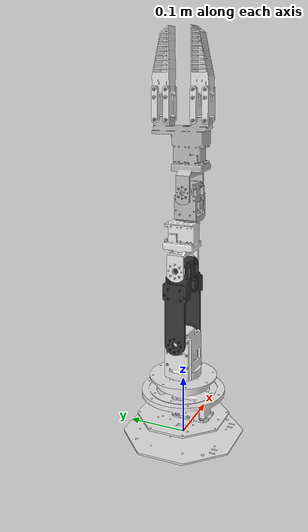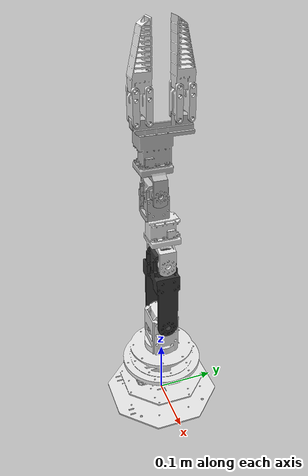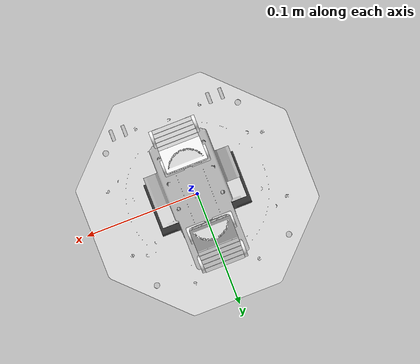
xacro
<?xml version="1.0"?>
<robot xmlns:xacro="http://www.ros.org/wiki/xacro" name="dynamixel_arm">
    <xacro:arg name="initial_positions_file" default="initial_positions.yaml" />

    <!-- Import dynamixel_arm urdf file -->
    <xacro:include filename="$(find dynamixel_arm_description)/urdf/dynamixel_arm.urdf" />

    <!-- Import control_xacro -->
    <xacro:include filename="dynamixel_arm.ros2_control.xacro" />

    <xacro:dynamixel_arm_ros2_control name="FakeSystem" initial_positions_file="$(arg initial_positions_file)"/>

</robot>

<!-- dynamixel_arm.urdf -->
<robot name="dynamixel_arm">
  <material name="silver_default">
    <color rgba="0.700 0.700 0.700 1.000"/>
  </material>
  <material name="opaque235235235">
    <color rgba="0.9215686274509803 0.9215686274509803 0.9215686274509803 1.0"/>
  </material>
  <material name="opaque545454">
    <color rgba="0.21176470588235294 0.21176470588235294 0.21176470588235294 1.0"/>
  </material>
  <material name="opaque191191191">
    <color rgba="0.7490196078431373 0.7490196078431373 0.7490196078431373 1.0"/>
  </material>

  <!-- Transmissions -->
  <transmission name="joint1_tran">
    <type>transmission_interface/SimpleTransmission</type>
    <joint name="joint1">
      <hardwareInterface>hardware_interface/PositionJointInterface</hardwareInterface>
    </joint>
    <actuator name="joint1_actr">
      <hardwareInterface>hardware_interface/PositionJointInterface</hardwareInterface>
      <mechanicalReduction>1</mechanicalReduction>
    </actuator>
  </transmission>

  <transmission name="joint2_tran">
    <type>transmission_interface/SimpleTransmission</type>
    <joint name="joint2">
      <hardwareInterface>hardware_interface/PositionJointInterface</hardwareInterface>
    </joint>
    <actuator name="joint2_actr">
      <hardwareInterface>hardware_interface/PositionJointInterface</hardwareInterface>
      <mechanicalReduction>1</mechanicalReduction>
    </actuator>
  </transmission>

  <transmission name="joint3_tran">
    <type>transmission_interface/SimpleTransmission</type>
    <joint name="joint3">
      <hardwareInterface>hardware_interface/PositionJointInterface</hardwareInterface>
    </joint>
    <actuator name="joint3_actr">
      <hardwareInterface>hardware_interface/PositionJointInterface</hardwareInterface>
      <mechanicalReduction>1</mechanicalReduction>
    </actuator>
  </transmission>

  <transmission name="joint4_tran">
    <type>transmission_interface/SimpleTransmission</type>
    <joint name="joint4">
      <hardwareInterface>hardware_interface/PositionJointInterface</hardwareInterface>
    </joint>
    <actuator name="joint4_actr">
      <hardwareInterface>hardware_interface/PositionJointInterface</hardwareInterface>
      <mechanicalReduction>1</mechanicalReduction>
    </actuator>
  </transmission>

  <transmission name="joint5_tran">
    <type>transmission_interface/SimpleTransmission</type>
    <joint name="joint5">
      <hardwareInterface>hardware_interface/PositionJointInterface</hardwareInterface>
    </joint>
    <actuator name="joint5_actr">
      <hardwareInterface>hardware_interface/PositionJointInterface</hardwareInterface>
      <mechanicalReduction>1</mechanicalReduction>
    </actuator>
  </transmission>

  <transmission name="gripper_tran">
    <type>transmission_interface/SimpleTransmission</type>
    <joint name="gripper">
      <hardwareInterface>hardware_interface/PositionJointInterface</hardwareInterface>
    </joint>
    <actuator name="gripper_actr">
      <hardwareInterface>hardware_interface/PositionJointInterface</hardwareInterface>
      <mechanicalReduction>1</mechanicalReduction>
    </actuator>
  </transmission>

  <transmission name="outlink1_tran">
    <type>transmission_interface/SimpleTransmission</type>
    <joint name="outlink1">
      <hardwareInterface>hardware_interface/PositionJointInterface</hardwareInterface>
    </joint>
    <actuator name="outlink1_actr">
      <hardwareInterface>hardware_interface/PositionJointInterface</hardwareInterface>
      <mechanicalReduction>1</mechanicalReduction>
    </actuator>
  </transmission>

  <transmission name="outlink2_upper_tran">
    <type>transmission_interface/SimpleTransmission</type>
    <joint name="outlink2_upper">
      <hardwareInterface>hardware_interface/PositionJointInterface</hardwareInterface>
    </joint>
    <actuator name="outlink2_upper_actr">
      <hardwareInterface>hardware_interface/PositionJointInterface</hardwareInterface>
      <mechanicalReduction>1</mechanicalReduction>
    </actuator>
  </transmission>

  <transmission name="outlink1_upper_tran">
    <type>transmission_interface/SimpleTransmission</type>
    <joint name="outlink1_upper">
      <hardwareInterface>hardware_interface/PositionJointInterface</hardwareInterface>
    </joint>
    <actuator name="outlink1_upper_actr">
      <hardwareInterface>hardware_interface/PositionJointInterface</hardwareInterface>
      <mechanicalReduction>1</mechanicalReduction>
    </actuator>
  </transmission>

  <!-- Links -->
  <link name="base_link">
    <inertial>
      <origin rpy="0 0 0" xyz="-0.000113337289716781 -0.00309076282926622 0.056311276285655"/>
      <mass value="0.422228337302641"/>
      <inertia ixx="0.00112843002096474" ixy="-1.66340254078764e-07" ixz="1.17964827473214e-06" iyy="0.00109272943382664" iyz="-1.56035446544229e-06" izz="0.0010635705036595"/>
    </inertial>
    <visual>
      <origin rpy="0 0 0" xyz="0 0 0"/>
      <geometry>
        <mesh filename="package://dynamixel_arm_description/meshes/base_link.stl" scale="0.001 0.001 0.001"/>
      </geometry>
      <material name="opaque235235235"/>
    </visual>
    <collision>
      <origin rpy="0 0 0" xyz="0 0 0"/>
      <geometry>
        <mesh filename="package://dynamixel_arm_description/meshes/base_link.stl" scale="0.001 0.001 0.001"/>
      </geometry>
    </collision>
  </link>

  <link name="link_1_1">
    <inertial>
      <origin rpy="0 0 0" xyz="-0.00021127011294436507 1.595606746709482e-05 0.03689469547015051"/>
      <mass value="0.191421447446045"/>
      <inertia ixx="0.000187614835027364" ixy="1.55276339993076e-09" ixz="1.97342429764555e-06" iyy="0.000199164507943486" iyz="-5.72420498094766e-08" izz="6.97213054895995e-05"/>
    </inertial>
    <visual>
      <origin rpy="0 0 0" xyz="0.000245 -4.5e-05 -0.1003"/>
      <geometry>
        <mesh filename="package://dynamixel_arm_description/meshes/link_1_1.stl" scale="0.001 0.001 0.001"/>
      </geometry>
      <material name="opaque235235235"/>
    </visual>
    <collision>
      <origin rpy="0 0 0" xyz="0.000245 -4.5e-05 -0.1003"/>
      <geometry>
        <mesh filename="package://dynamixel_arm_description/meshes/link_1_1.stl" scale="0.001 0.001 0.001"/>
      </geometry>
    </collision>
  </link>

  <link name="link_2_1">
    <inertial>
      <origin rpy="0 0 0" xyz="0.02591593484212496 3.986740963651461e-05 0.08437010561785152"/>
      <mass value="0.137640357094768"/>
      <inertia ixx="0.000210163851263243" ixy="2.1567553744296e-09" ixz="4.61871241706466e-06" iyy="0.00026441483283246" iyz="-8.51937840517638e-08" izz="8.19214620197699e-05"/>
    </inertial>
    <visual>
      <origin rpy="0 0 0" xyz="0.026245 -7.8e-05 -0.1729"/>
      <geometry>
        <mesh filename="package://dynamixel_arm_description/meshes/link_2_1.stl" scale="0.001 0.001 0.001"/>
      </geometry>
      <material name="opaque545454"/>
    </visual>
    <collision>
      <origin rpy="0 0 0" xyz="0.026245 -7.8e-05 -0.1729"/>
      <geometry>
        <mesh filename="package://dynamixel_arm_description/meshes/link_2_1.stl" scale="0.001 0.001 0.001"/>
      </geometry>
    </collision>
  </link>

  <link name="link_3_1">
    <inertial>
      <origin rpy="0 0 0" xyz="0.02389185573820618 0.00039017901099007115 0.039646162333625445"/>
      <mass value="0.0865814264869725"/>
      <inertia ixx="5.26983036251445e-05" ixy="1.23803634269193e-08" ixz="1.34215329925785e-06" iyy="5.82181519370745e-05" iyz="3.3725159958289e-07" izz="3.23003384463733e-05"/>
    </inertial>
    <visual>
      <origin rpy="0 0 0" xyz="0.023845 -0.000136 -0.296812"/>
      <geometry>
        <mesh filename="package://dynamixel_arm_description/meshes/link_3_1.stl" scale="0.001 0.001 0.001"/>
      </geometry>
      <material name="opaque235235235"/>
    </visual>
    <collision>
      <origin rpy="0 0 0" xyz="0.023845 -0.000136 -0.296812"/>
      <geometry>
        <mesh filename="package://dynamixel_arm_description/meshes/link_3_1.stl" scale="0.001 0.001 0.001"/>
      </geometry>
    </collision>
  </link>

  <link name="link_4_1">
    <inertial>
      <origin rpy="0 0 0" xyz="-4.729244333769619e-05 1.2736207935194407e-05 0.027634557411537197"/>
      <mass value="0.0619910161529994"/>
      <inertia ixx="2.25267050284594e-05" ixy="9.478187392860066e-11" ixz="2.04420176912613e-07" iyy="2.59843604385711e-05" iyz="-5.8368411178563e-09" izz="1.34826294019835e-05"/>
    </inertial>
    <visual>
      <origin rpy="0 0 0" xyz="0.000345 0.011427 -0.375018"/>
      <geometry>
        <mesh filename="package://dynamixel_arm_description/meshes/link_4_1.stl" scale="0.001 0.001 0.001"/>
      </geometry>
      <material name="opaque191191191"/>
    </visual>
    <collision>
      <origin rpy="0 0 0" xyz="0.000345 0.011427 -0.375018"/>
      <geometry>
        <mesh filename="package://dynamixel_arm_description/meshes/link_4_1.stl" scale="0.001 0.001 0.001"/>
      </geometry>
    </collision>
  </link>

  <link name="link_5_1">
    <inertial>
      <origin rpy="0 0 0" xyz="0.02247506515647412 0.0032734067218829366 0.059549232712919675"/>
      <mass value="0.125379089079449"/>
      <inertia ixx="0.000159136830790569" ixy="-5.13967328740984e-08" ixz="-9.34886894704644e-07" iyy="0.000128193874409835" iyz="-1.71087932324318e-05" izz="6.86470115827554e-05"/>
    </inertial>
    <visual>
      <origin rpy="0 0 0" xyz="0.023045 0.011405 -0.421518"/>
      <geometry>
        <mesh filename="package://dynamixel_arm_description/meshes/link_5_1.stl" scale="0.001 0.001 0.001"/>
      </geometry>
      <material name="opaque191191191"/>
    </visual>
    <collision>
      <origin rpy="0 0 0" xyz="0.023045 0.011405 -0.421518"/>
      <geometry>
        <mesh filename="package://dynamixel_arm_description/meshes/link_5_1.stl" scale="0.001 0.001 0.001"/>
      </geometry>
    </collision>
  </link>

  <link name="linkout_1_1">
    <inertial>
      <origin rpy="0 0 0" xyz="-0.008749719683909477 1.0177443021751331e-05 0.021281981725918775"/>
      <mass value="0.010667990446522"/>
      <inertia ixx="1.66185068535855e-06" ixy="6.296366473855638e-19" ixz="5.831398325372231e-18" iyy="2.51806760939721e-06" iyz="-6.83607997357775e-10" izz="1.0414279599588e-06"/>
    </inertial>
    <visual>
      <origin rpy="0 0 0" xyz="-0.008255 0.040756 -0.527932"/>
      <geometry>
        <mesh filename="package://dynamixel_arm_description/meshes/linkout_1_1.stl" scale="0.001 0.001 0.001"/>
      </geometry>
      <material name="opaque235235235"/>
    </visual>
    <collision>
      <origin rpy="0 0 0" xyz="-0.008255 0.040756 -0.527932"/>
      <geometry>
        <mesh filename="package://dynamixel_arm_description/meshes/linkout_1_1.stl" scale="0.001 0.001 0.001"/>
      </geometry>
    </collision>
  </link>

  <link name="linkin_1_1">
    <inertial>
      <origin rpy="0 0 0" xyz="-0.008749719683895821 -6.803660653320262e-05 0.021452642980543057"/>
      <mass value="0.009902955851522"/>
      <inertia ixx="1.63040160058425e-06" ixy="6.281675746176696e-19" ixz="-5.685285141970864e-18" iyy="2.4911226210139e-06" iyz="-6.73132213324949e-09" izz="1.03347610765994e-06"/>
    </inertial>
    <visual>
      <origin rpy="0 0 0" xyz="-0.008255 0.021756 -0.527923"/>
      <geometry>
        <mesh filename="package://dynamixel_arm_description/meshes/linkin_1_1.stl" scale="0.001 0.001 0.001"/>
      </geometry>
      <material name="opaque235235235"/>
    </visual>
    <collision>
      <origin rpy="0 0 0" xyz="-0.008255 0.021756 -0.527923"/>
      <geometry>
        <mesh filename="package://dynamixel_arm_description/meshes/linkin_1_1.stl" scale="0.001 0.001 0.001"/>
      </geometry>
    </collision>
  </link>

  <link name="linkin_2_1">
    <inertial>
      <origin rpy="0 0 0" xyz="-0.008749719683863354 8.849206158021566e-05 0.021453029167782023"/>
      <mass value="0.009902955851522"/>
      <inertia ixx="1.63040160058381e-06" ixy="6.317542297536996e-19" ixz="5.828433710056841e-18" iyy="2.49113391998564e-06" iyz="5.37035048676633e-09" izz="1.03346480868897e-06"/>
    </inertial>
    <visual>
      <origin rpy="0 0 0" xyz="-0.008255 -0.022244 -0.527902"/>
      <geometry>
        <mesh filename="package://dynamixel_arm_description/meshes/linkin_2_1.stl" scale="0.001 0.001 0.001"/>
      </geometry>
      <material name="opaque235235235"/>
    </visual>
    <collision>
      <origin rpy="0 0 0" xyz="-0.008255 -0.022244 -0.527902"/>
      <geometry>
        <mesh filename="package://dynamixel_arm_description/meshes/linkin_2_1.stl" scale="0.001 0.001 0.001"/>
      </geometry>
    </collision>
  </link>

  <link name="linkout_2_1">
    <inertial>
      <origin rpy="0 0 0" xyz="-0.008749719683849508 1.0168507691990514e-05 0.02128270126064702"/>
      <mass value="0.010667990446522"/>
      <inertia ixx="1.66185068535768e-06" ixy="6.293190100303435e-19" ixz="5.829704259477722e-18" iyy="2.51806760939721e-06" iyz="-6.83607997411986e-10" izz="1.0414279599588e-06"/>
    </inertial>
    <visual>
      <origin rpy="0 0 0" xyz="-0.008255 -0.041244 -0.527893"/>
      <geometry>
        <mesh filename="package://dynamixel_arm_description/meshes/linkout_2_1.stl" scale="0.001 0.001 0.001"/>
      </geometry>
      <material name="opaque235235235"/>
    </visual>
    <collision>
      <origin rpy="0 0 0" xyz="-0.008255 -0.041244 -0.527893"/>
      <geometry>
        <mesh filename="package://dynamixel_arm_description/meshes/linkout_2_1.stl" scale="0.001 0.001 0.001"/>
      </geometry>
    </collision>
  </link>

  <link name="fin_2_1">
    <inertial>
      <origin rpy="0 0 0" xyz="-0.008699719683907058 0.011136821290282563 0.025898859363805316"/>
      <mass value="0.0281715781011337"/>
      <inertia ixx="1.75973238202426e-05" ixy="-1.457955460461464e-19" ixz="4.938202082492571e-19" iyy="1.71444337400337e-05" iyz="-1.60996065305652e-06" izz="3.2281470901434e-06"/>
    </inertial>
    <visual>
      <origin rpy="0 0 0" xyz="-0.008255 0.040735 -0.572932"/>
      <geometry>
        <mesh filename="package://dynamixel_arm_description/meshes/fin_2_1.stl" scale="0.001 0.001 0.001"/>
      </geometry>
      <material name="opaque235235235"/>
    </visual>
    <collision>
      <origin rpy="0 0 0" xyz="-0.008255 0.040735 -0.572932"/>
      <geometry>
        <mesh filename="package://dynamixel_arm_description/meshes/fin_2_1.stl" scale="0.001 0.001 0.001"/>
      </geometry>
    </collision>
  </link>

  <link name="fin_1_1">
    <inertial>
      <origin rpy="0 0 0" xyz="-0.008699719683863214 -0.010810946932019807 0.025909852599709793"/>
      <mass value="0.0281715332339428"/>
      <inertia ixx="1.75842581258794e-05" ixy="-5.014964443337492e-19" ixz="2.763021473943528e-18" iyy="1.71473246262221e-05" iyz="1.50304933944781e-06" izz="3.21218655379927e-06"/>
    </inertial>
    <visual>
      <origin rpy="0 0 0" xyz="-0.008255 -0.041265 -0.572893"/>
      <geometry>
        <mesh filename="package://dynamixel_arm_description/meshes/fin_1_1.stl" scale="0.001 0.001 0.001"/>
      </geometry>
      <material name="opaque235235235"/>
    </visual>
    <collision>
      <origin rpy="0 0 0" xyz="-0.008255 -0.041265 -0.572893"/>
      <geometry>
        <mesh filename="package://dynamixel_arm_description/meshes/fin_1_1.stl" scale="0.001 0.001 0.001"/>
      </geometry>
    </collision>
  </link>

  <link name="end_effector"/>
  <link name="gripper_link"/>

  <!-- Joints -->
  <joint name="joint1" type="revolute">
    <origin rpy="0 0 0" xyz="-0.000245 4.5e-05 0.1003"/>
    <parent link="base_link"/>
    <child link="link_1_1"/>
    <axis xyz="0 0 1"/>
    <limit effort="100" lower="-3.141593" upper="3.141593" velocity="100"/>
  </joint>

  <joint name="joint2" type="revolute">
    <origin rpy="0 0 0" xyz="-0.026 3.3e-05 0.0726"/>
    <parent link="link_1_1"/>
    <child link="link_2_1"/>
    <axis xyz="-1 0 0"/>
    <limit effort="100" lower="-1.570796" upper="1.570796" velocity="100"/>
  </joint>

  <joint name="joint3" type="revolute">
    <origin rpy="0 0 0" xyz="0.0024 5.8e-05 0.123912"/>
    <parent link="link_2_1"/>
    <child link="link_3_1"/>
    <axis xyz="-1 0 0"/>
    <limit effort="100" lower="-1.570796" upper="1.570796" velocity="100"/>
  </joint>

  <joint name="joint4" type="revolute">
    <origin rpy="0 0 0" xyz="0.0235 -0.011563 0.078206"/>
    <parent link="link_3_1"/>
    <child link="link_4_1"/>
    <axis xyz="0 0 1"/>
    <limit effort="100" lower="-3.141593" upper="3.141593" velocity="100"/>
  </joint>

  <joint name="joint5" type="revolute">
    <origin rpy="0 0 0" xyz="-0.0227 2.2e-05 0.0465"/>
    <parent link="link_4_1"/>
    <child link="link_5_1"/>
    <axis xyz="-1 0 0"/>
    <limit effort="100" lower="-1.570796" upper="1.570796" velocity="100"/>
  </joint>

<!-- ======= Gripper Joints ======= -->

  <joint name="outlink2" type="revolute">
    <origin rpy="0 0 0" xyz="0.0313 -0.029351 0.106414"/>
    <parent link="link_5_1"/>
    <child link="linkout_1_1"/>
    <axis xyz="-1 0 0"/>
    <limit effort="100" lower="-0.575959" upper="0.383972" velocity="100"/>
    <mimic joint="gripper" multiplier="0.05" offset="0.006"/> <!-- Gripper Multiplier -->
  </joint>

  <joint name="inlink2" type="revolute">
    <origin rpy="0 0 0" xyz="0.0313 -0.010351 0.106405"/>
    <parent link="link_5_1"/>
    <child link="linkin_1_1"/>
    <axis xyz="-1 0 0"/>
    <limit effort="100" lower="-0.575959" upper="0.383972" velocity="100"/>
    <mimic joint="gripper" multiplier="0.05" offset="0.006"/> <!-- Gripper Multiplier -->
  </joint>

  <joint name="outlink2_upper" type="revolute">
    <origin rpy="0 0 0" xyz="0.0 2.1e-05 0.045"/>
    <parent link="linkout_1_1"/>
    <child link="fin_2_1"/>
    <axis xyz="1 0 0"/>
    <limit effort="100" lower="-0.575959" upper="0.383972" velocity="100"/>
    <mimic joint="gripper" multiplier="0.05" offset="0.006"/> <!-- Gripper Multiplier -->
  </joint>

  <joint name="outlink1" type="revolute">
    <origin rpy="0 0 0" xyz="0.0313 0.052649 0.106375"/>
    <parent link="link_5_1"/>
    <child link="linkout_2_1"/>
    <axis xyz="-1 0 0"/>
    <limit effort="100" lower="-0.383972" upper="0.575959" velocity="100"/>
    <mimic joint="gripper" multiplier="-0.05" offset="0.006"/> <!-- Gripper Multiplier -->
  </joint>

  <joint name="inlink1" type="revolute">
    <origin rpy="0 0 0" xyz="0.0313 0.033649 0.106384"/>
    <parent link="link_5_1"/>
    <child link="linkin_2_1"/>
    <axis xyz="-1 0 0"/>
    <limit effort="100" lower="-0.383972" upper="0.575959" velocity="100"/>
    <mimic joint="gripper" multiplier="-0.05" offset="0.006"/> <!-- Gripper Multiplier -->
  </joint>

  <joint name="outlink1_upper" type="revolute">
    <origin rpy="0 0 0" xyz="0.0 2.1e-05 0.045"/>
    <parent link="linkout_2_1"/>
    <child link="fin_1_1"/>
    <axis xyz="1 0 0"/>
    <limit effort="100" lower="-0.383972" upper="0.575959" velocity="100"/>
    <mimic joint="gripper" multiplier="-0.05" offset="0.006"/> <!-- Gripper Multiplier -->
  </joint>

  <joint name="gripper" type="revolute">
    <origin xyz="0.0226 0.01194171505988 0.24098628193808" rpy="0 0 0"/>
    <parent link="link_5_1"/>
    <child link="gripper_link"/>
    <axis xyz="0 0 1"/>
    <limit effort="100" lower="-65.5269905" upper="94.98867187" velocity="10.0"/> <!-- Gripper Multiplier -->
  </joint>

  <joint name="end_effector_frame" type="fixed">
    <parent link="link_5_1"/>
    <child link="end_effector"/>
    <origin xyz="0.0226 0.01194171505988 0.24098628193808" rpy="0 0 0"/>
  </joint>

  <ros2_control name="DynamixelArmHardwareInterface" type="system">
    <hardware>
        <plugin>dynamixel_hardware/DynamixelHardware</plugin>
        <param name="usb_port">/dev/ttyUSB0</param>
        <param name="port_name">/dev/ttyUSB0</param>
        <param name="baud_rate">1000000</param>
        <param name="use_dummy">false</param>
    </hardware>

    <joint name="joint1">
        <param name="id">1</param>
        <param name="control_mode">position</param>
        <command_interface name="position"/>
        <state_interface name="position"/>
        <state_interface name="velocity"/>
    </joint>

    <joint name="joint2">
        <param name="id">2</param>
        <param name="control_mode">position</param>
        <command_interface name="position"/>
        <state_interface name="position"/>
        <state_interface name="velocity"/>
    </joint>

    <joint name="joint3">
        <param name="id">3</param>
        <param name="control_mode">position</param>
        <command_interface name="position"/>
        <state_interface name="position"/>
        <state_interface name="velocity"/>
    </joint>

    <joint name="joint4">
        <param name="id">4</param>
        <param name="control_mode">position</param>
        <command_interface name="position"/>
        <state_interface name="position"/>
        <state_interface name="velocity"/>
    </joint>

    <joint name="joint5">
        <param name="id">5</param>
        <param name="control_mode">position</param>
        <command_interface name="position"/>
        <state_interface name="position"/>
        <state_interface name="velocity"/>
    </joint>

    <joint name="gripper">
        <param name="id">6</param>
        <param name="control_mode">extended_position</param>
        <command_interface name="position"/>
        <state_interface name="position"/>
        <state_interface name="velocity"/>
    </joint>

  </ros2_control>

</robot>
